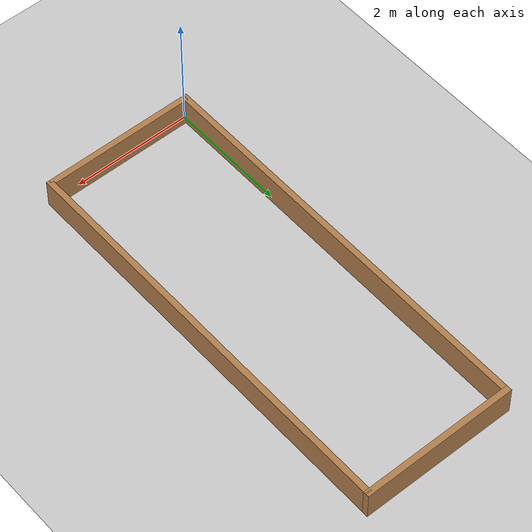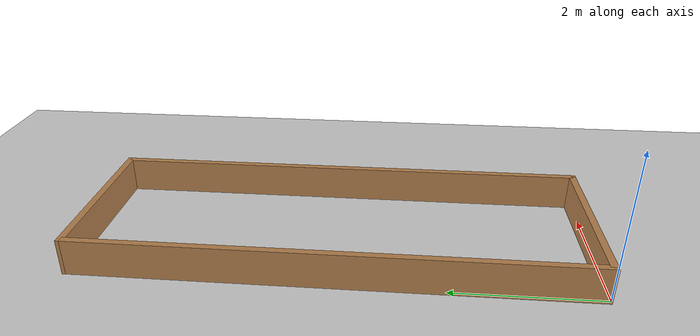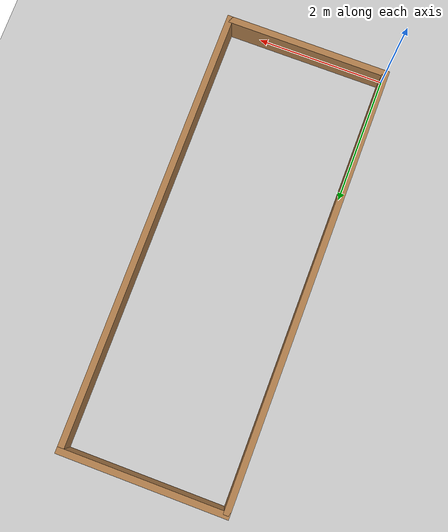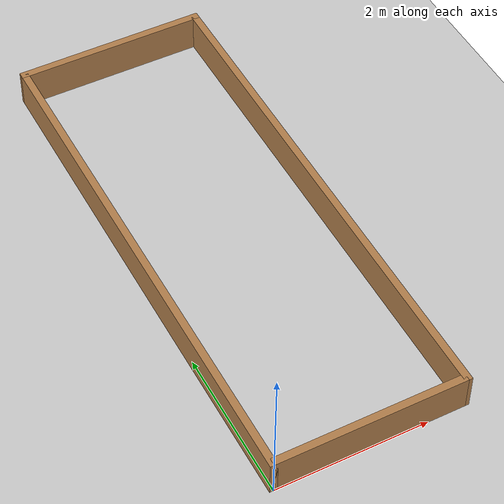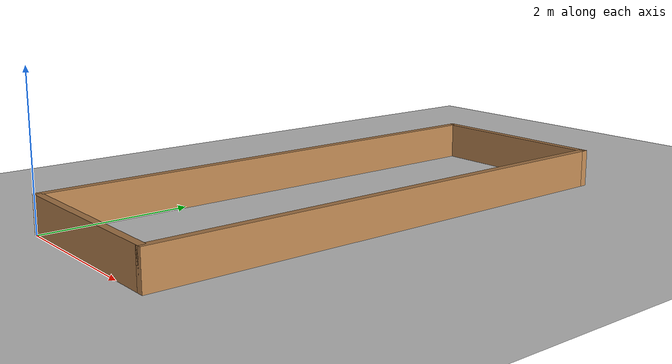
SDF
<?xml version="1.0"?>
<sdf version='1.6'>
  <world name='empty_walls'>
    <!-- A global light source -->
    <include>
      <uri>model://sun</uri>
    </include>

    <!-- A ground plane -->
    <include>
      <uri>model://ground_plane</uri>
    </include>

    <physics name='default_physics' default='0' type='ode'>
      <max_step_size>0.01</max_step_size>
      <real_time_factor>1</real_time_factor>
      <real_time_update_rate>100</real_time_update_rate>
    </physics>

    <!-- No shadows -->
    <scene>
      <ambient>0.4 0.4 0.4 1</ambient>
      <background>0.7 0.7 0.7 1</background>
      <shadows>0</shadows>
    </scene>

    <gui fullscreen='0'>
      <camera name='user_camera'>
        <pose frame=''>7.55281 -2.00347 4.25994 -0 0.56764 2.3882</pose>
        <view_controller>orbit</view_controller>
        <projection_type>perspective</projection_type>
      </camera>
    </gui>

    <!-- The arena -->
    <model name="moon_arena">
      <include>
        <uri>model://arena</uri>
      </include>
    </model>

  </world>
</sdf>

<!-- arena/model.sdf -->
<sdf version='1.6'>
  <model name='moon_arena'>
    <pose frame=''>0 0 0 0 -0 0</pose>
    <link name='short_wall_1'>
      <collision name='short_wall_1_Collision'>
        <geometry>
          <box>
            <size>2.6 0.1 0.5</size>
          </box>
        </geometry>
        <pose frame=''>0 0 0.25 0 -0 0</pose>
        <max_contacts>10</max_contacts>
      </collision>
      <visual name='short_wall_1_Visual'>
        <pose frame=''>0 0 0.25 0 -0 0</pose>
        <geometry>
          <box>
            <size>2.5 0.1 0.5</size>
          </box>
        </geometry>
        <material>
          <script>
            <uri>file://media/materials/scripts/gazebo.material</uri>
            <name>Gazebo/Wood</name>
          </script>
          <ambient>1 1 1 1</ambient>
        </material>
        <meta>
          <layer>0</layer>
        </meta>
      </visual>
      <pose frame=''>1.25 0.05 0 0 -0 0</pose>
      <self_collide>0</self_collide>
      <enable_wind>0</enable_wind>
      <kinematic>0</kinematic>
    </link>
    <link name='long_wall_1'>
      <collision name='long_wall_1_Collision'>
        <geometry>
          <box>
            <size>6.9 0.1 0.5</size>
          </box>
        </geometry>
        <pose frame=''>0 0 0.25 0 -0 0</pose>
        <max_contacts>10</max_contacts>
      </collision>
      <visual name='long_wall_1_Visual'>
        <pose frame=''>0 0 0.25 0 -0 0</pose>
        <geometry>
          <box>
            <size>6.9 0.1 0.5</size>
          </box>
        </geometry>
        <material>
          <script>
            <uri>file://media/materials/scripts/gazebo.material</uri>
            <name>Gazebo/Wood</name>
          </script>
          <ambient>1 1 1 1</ambient>
        </material>
        <meta>
          <layer>0</layer>
        </meta>
      </visual>
      <pose frame=''>0 3.45 0 0 -0 1.5708</pose>
      <self_collide>0</self_collide>
      <enable_wind>0</enable_wind>
      <kinematic>0</kinematic>
    </link>
    <link name='long_wall_2'>
      <collision name='long_wall_2_Collision'>
        <geometry>
          <box>
            <size>6.9 0.1 0.5</size>
          </box>
        </geometry>
        <pose frame=''>0 0 0.25 0 -0 0</pose>
        <max_contacts>10</max_contacts>
      </collision>
      <visual name='long_wall_2_Visual'>
        <pose frame=''>0 0 0.25 0 -0 0</pose>
        <geometry>
          <box>
            <size>6.9 0.1 0.5</size>
          </box>
        </geometry>
        <material>
          <script>
            <uri>file://media/materials/scripts/gazebo.material</uri>
            <name>Gazebo/Wood</name>
          </script>
          <ambient>1 1 1 1</ambient>
        </material>
        <meta>
          <layer>0</layer>
        </meta>
      </visual>
      <pose frame=''>2.5 3.45 0 0 -0 1.5708</pose>
      <self_collide>0</self_collide>
      <enable_wind>0</enable_wind>
      <kinematic>0</kinematic>
    </link>
    <link name='short_wall_2'>
      <collision name='short_wall_2_Collision'>
        <geometry>
          <box>
            <size>2.5 0.1 0.5</size>
          </box>
        </geometry>
        <pose frame=''>0 0 0.25 0 -0 0</pose>
        <max_contacts>10</max_contacts>
      </collision>
      <visual name='short_wall_2_Visual'>
        <pose frame=''>0 0 0.25 0 -0 0</pose>
        <geometry>
          <box>
            <size>2.6 0.1 0.5</size>
          </box>
        </geometry>
        <material>
          <script>
            <uri>file://media/materials/scripts/gazebo.material</uri>
            <name>Gazebo/Wood</name>
          </script>
          <ambient>1 1 1 1</ambient>
        </material>
        <meta>
          <layer>0</layer>
        </meta>
      </visual>
      <pose frame=''>1.25 6.9 0 0 -0 0</pose>
      <self_collide>0</self_collide>
      <enable_wind>0</enable_wind>
      <kinematic>0</kinematic>
    </link>
    <static>1</static>
  </model>
</sdf>
